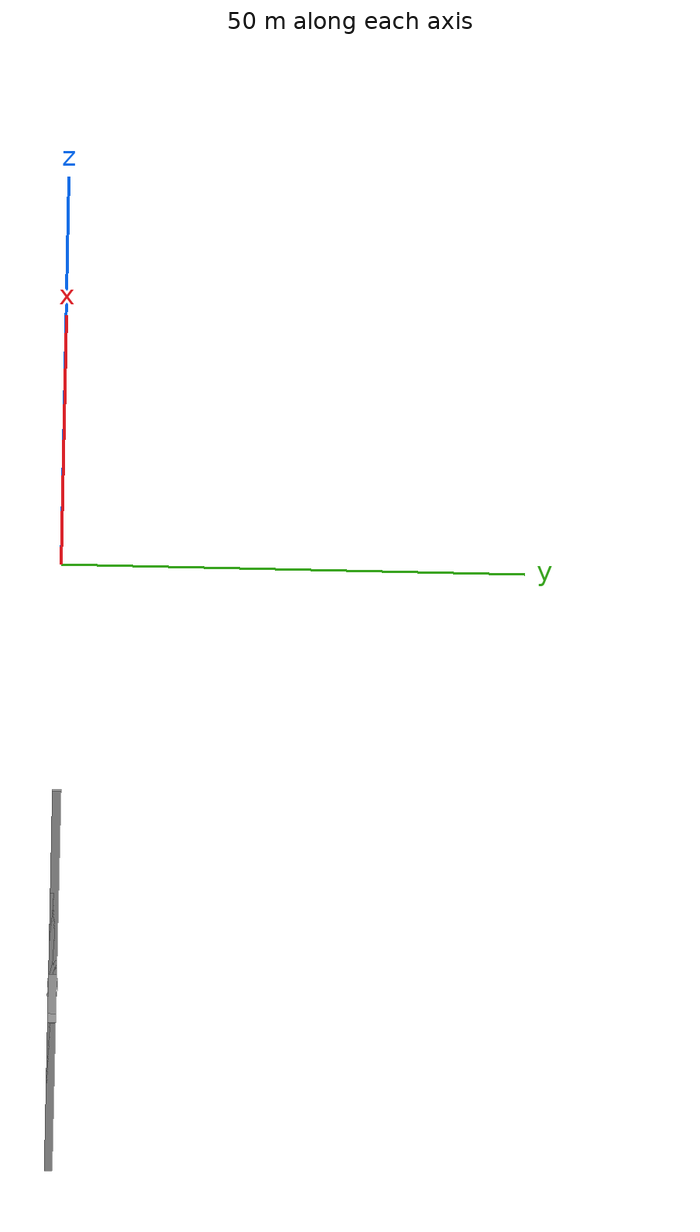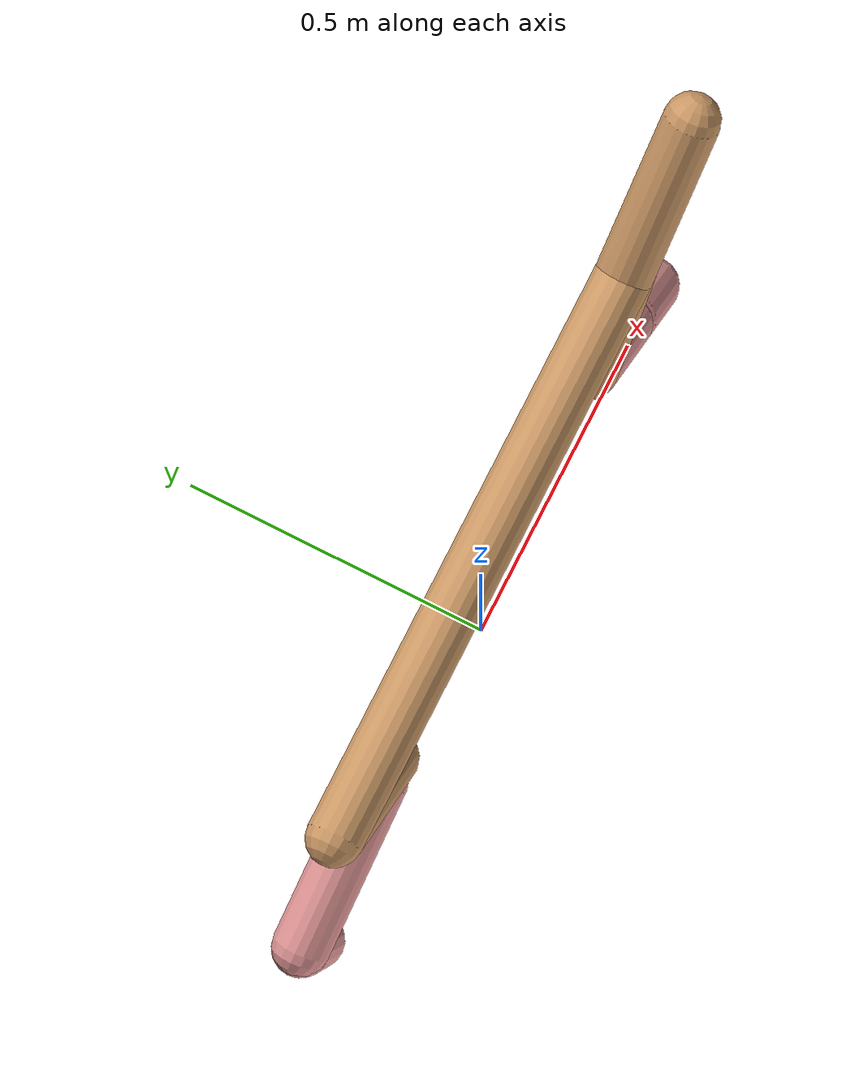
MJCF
<mujoco model="cheetah">
  <compiler angle="radian" coordinate="local" inertiafromgeom="true" settotalmass="14"/>
  <default>
    <joint armature=".1" damping=".01" limited="true" solimplimit="0 .8 .03" solreflimit=".02 1" stiffness="8"/>
    <geom conaffinity="0" condim="3" contype="1" friction=".4 .1 .1" rgba="0.8 0.6 .4 1" solimp="0.0 0.8 0.01" solref="0.02 1"/>
    <motor ctrllimited="true" ctrlrange="-1 1"/>
  </default>
  <size nstack="300000" nuser_geom="1"/>
  <option gravity="0 0 -9.81" timestep="0.01"/>

  <worldbody>
    <light cutoff="100" diffuse="1 1 1" dir="-0 0 -1.3" directional="true" exponent="1" pos="0 0 1.3" specular=".1 .1 .1"/>
    <body name="torso" pos="0 0 .7">
      <camera name="track" mode="trackcom" pos="0 -5 0.25" xyaxes="1 0 0 0 0 1"/>
      <joint armature="0" axis="1 0 0" damping="0" limited="false" name="rootx" pos="0 0 0" stiffness="0" type="slide"/>
      <joint armature="0" axis="0 0 1" damping="0" limited="false" name="rootz" pos="0 0 0" stiffness="0" type="slide"/>
      <joint armature="0" axis="0 1 0" damping="0" limited="false" name="rooty" pos="0 0 0" stiffness="0" type="hinge"/>
      <geom fromto="-.5 0 0 .5 0 0" name="torso" size="0.046" type="capsule"/>
      <geom axisangle="0 1 0 .87" name="head" pos=".6 0 .1" size="0.046 .15" type="capsule"/>
      <body name="bthigh" pos="-.5 0 0">
        <joint axis="0 1 0" damping="6" name="bthigh" pos="0 0 0" range="-.52 1.05" stiffness="240" type="hinge"/>
        <geom axisangle="0 1 0 -3.8" name="bthigh" pos=".1 0 -.13" size="0.046 .145" type="capsule"/>
        <body name="bshin" pos=".16 0 -.25">
          <joint axis="0 1 0" damping="4.5" name="bshin" pos="0 0 0" range="-.785 .785" stiffness="180" type="hinge"/>
          <geom axisangle="0 1 0 -2.03" name="bshin" pos="-.14 0 -.07" rgba="0.9 0.6 0.6 1" size="0.046 .15" type="capsule"/>
          <body name="bfoot" pos="-.28 0 -.14">
            <joint axis="0 1 0" damping="3" name="bfoot" pos="0 0 0" range="-.4 .785" stiffness="120" type="hinge"/>
            <geom axisangle="0 1 0 -.27" name="bfoot" pos=".03 0 -.097" rgba="0.9 0.6 0.6 1" size="0.046 .094" type="capsule"/>
          </body>
        </body>
      </body>
      <body name="fthigh" pos=".5 0 0">
        <joint axis="0 1 0" damping="4.5" name="fthigh" pos="0 0 0" range="-1 .7" stiffness="180" type="hinge"/>
        <geom axisangle="0 1 0 .52" name="fthigh" pos="-.07 0 -.12" size="0.046 .133" type="capsule"/>
        <body name="fshin" pos="-.14 0 -.24">
          <joint axis="0 1 0" damping="3" name="fshin" pos="0 0 0" range="-1.2 .87" stiffness="120" type="hinge"/>
          <geom axisangle="0 1 0 -.6" name="fshin" pos=".065 0 -.09" rgba="0.9 0.6 0.6 1" size="0.046 .106" type="capsule"/>
          <body name="ffoot" pos=".13 0 -.18">
            <joint axis="0 1 0" damping="1.5" name="ffoot" pos="0 0 0" range="-.5 .5" stiffness="60" type="hinge"/>
            <geom axisangle="0 1 0 -.6" name="ffoot" pos=".045 0 -.07" rgba="0.9 0.6 0.6 1" size="0.046 .07" type="capsule"/>
          </body>
        </body>
      </body>
    </body>

    <body name="empty" pos="-100 0 0">
      <geom name="empty-geom" pos="0 0 100" mass = "0.0"
            type="box" size="0.001 0.001 0.001"
            rgba="0.9 0.9 0.9 1"
            contype="1" conaffinity="1"/>
    </body>

    <body name="obstacle0" pos="-100 0 0">
      <geom name="obstacle0_geom" pos="0 0 -0.3" mass = "0.0"
            type="box" size="0.25 0.6 0.5"
            rgba="0.9 0.9 0.9 1"
            contype="1" conaffinity="1"/>
    </body>
    <body name="obstacle0-ground" pos="-100 0 0">
      <geom name="obstacle0-ground" pos="0 0 -0.4" mass = "0.0"
            type="box" size="50 0.5 0.1"
            rgba="0.7 0.7 0.7 1"
            conaffinity="1"/>
    </body>

    <body name="obstacle1" pos="-100 0 0">
      <geom name="obstacle1_geom" pos="0 0 0.6" mass = "0.0"
            type="cylinder" size="0.5 0.6"
            rgba="0.9 0.9 0.9 1"
            contype="1" conaffinity="1"
            axisangle="1 0 0 1.5708"/>
    </body>
    <body name="obstacle1-ground" pos="-100 0 0">
      <geom name="obstacle1-ground" pos="0 0 -0.4" mass = "0.0"
            type="box" size="50 0.5 0.1"
            rgba="0.7 0.7 0.7 1"
            contype="1" conaffinity="1"/>
    </body>

    <body name="obstacle2" pos="-100 0 0">
      <geom name="obstacle2-a_geom" pos="0 0 -0.15" mass = "0.001"
            type="box" size="1.5 0.6 0.1"
            rgba="0.9 0.9 0.9 1"
            contype="1" conaffinity="1"
            friction="0.8 0.1 0.1"
            euler="0 -0.174533 0"/>
      <geom name="obstacle2b-geom" pos="-3.5 0 -0.4" mass = "0.001"
            type="box" size="2.5 0.5 0.1"
            rgba="0.7 0.7 0.7 1"
            contype="1" conaffinity="1"/>
      <geom name="obstacle2c-geom" pos="5.5 0 -0.4" mass = "0.001"
            type="box" size="2.5 0.5 0.1"
            rgba="0.7 0.7 0.7 1"
            contype="1" conaffinity="1"/>
    </body>
    <body name="obstacle2-ground" pos="-100 0 0">
      <geom name="obstacle2a-ground" pos="-15 0 -0.4" mass = "0.001"
            type="box" size="10 0.5 0.1"
            rgba="0.7 0.7 0.7 1"
            contype="1" conaffinity="1"/>
      <geom name="obstacle2b-ground" pos="15 0 -0.4" mass = "0.001"
            type="box" size="10 0.5 0.1"
            rgba="0.7 0.7 0.7 1"
            contype="1" conaffinity="1"/>
    </body>

    <body name="obstacle3" pos="-100 0 0">
      <geom name="obstacle3a_geom" pos="-1.2 0 -0.30" mass = "0.001"
            type="box" size="0.2 0.6 0.12"
            rgba="0.9 0.9 0.9 1"
            contype="1" conaffinity="1"/>
      <geom name="obstacle3b_geom" pos="-0.4 0 -0.18" mass = "0.001"
            type="box" size="0.2 0.6 0.12"
            rgba="0.9 0.9 0.9 1"
            contype="1" conaffinity="1"/>
      <geom name="obstacle3e-geom" pos="-4.3 0 -0.4" mass = "0.001"
            type="box" size="2.5 0.5 0.1"
            rgba="0.7 0.7 0.7 1"
            contype="1" conaffinity="1"/>
      <geom name="obstacle3f-geom" pos="2.8 0 -0.4" mass = "0.001"
            type="box" size="2.5 0.5 0.1"
            rgba="0.7 0.7 0.7 1"
            contype="1" conaffinity="1"/>
    </body>
    <body name="obstacle3-ground" pos="-100 0 0">
      <geom name="obstacle3a-ground" pos="-13 0 -0.4" mass = "0.001"
            type="box" size="10 0.5 0.1"
            rgba="0.7 0.7 0.7 1"
            contype="1" conaffinity="1"/>
      <geom name="obstacle3b-ground" pos="13 0 -0.4" mass = "0.001"
            type="box" size="10 0.5 0.1"
            rgba="0.7 0.7 0.7 1"
            contype="1" conaffinity="1"/>
    </body>

    <body name="obstacle4" pos="-100 0 0.0">         <!-- 20° = 0.349066 rad -->
      <geom name="obstacle4b-geom" pos="-4.1 0 -0.4" mass = "0.001"
            type="box" size="1.5 0.5 0.1"
            rgba="0.7 0.7 0.7 1"
            contype="1" conaffinity="1"/>
      <geom name="obstacle4c-geom" pos="5.17 0 -0.4" mass = "0.001"
            type="box" size="0.9 0.5 0.1"
            rgba="0.7 0.7 0.7 1"
            contype="1" conaffinity="1"/>
      <geom name="obstacle4d-geom" pos="-1.4 0 -1.3" mass = "0.001"
            type="box" size="0.4 0.5 0.1"
            rgba="0.7 0.7 0.7 1"
            contype="1" conaffinity="1"/>
      <geom name="obstacle4e-geom" pos="-1 0 -0.3" mass = "0.001"
            type="box" size="0.1 0.5 1.1"
            rgba="0.7 0.7 0.7 1"
            contype="1" conaffinity="1"/>
      <geom name="obstacle4f-geom" pos="-2.9 0 -2.59" mass = "0.0"
            type="box" size="1.2 0.5 0.1"
            rgba="0.9 0.9 0.9 1"
            contype="1" conaffinity="1"/>
      <geom name="obstacle4g-geom" pos="-2.25 0 -1.425" mass = "0.0"
            type="box" size="0.5 0.5 0.1"
            rgba="0.9 0.9 0.9 1"
            contype="1" conaffinity="1"
            euler="0 -0.261800 0"/>
      <geom name="obstacle4h-geom" pos="-4.45 0 -1.55" mass = "0.0"
            type="box" size="1.2 0.5 0.1"
            rgba="0.9 0.9 0.9 1"
            contype="1" conaffinity="1"
            euler="0 1.221731 0"/>
      <geom name="obstacle4i-geom" pos="-4.0 0 -2.4" mass = "0.0"
            type="box" size="0.3 0.5 0.1"
            rgba="0.9 0.9 0.9 1"
            contype="1" conaffinity="1"
            euler="0 0.785399 0"/>
      <geom name="obstacle4a-geom" pos="1.3 0 -1.49" mass = "0.0"
            type="box" size="3.2 0.5 0.1"
            rgba="0.9 0.9 0.9 1"
            contype="1" conaffinity="1"
            friction="1 0.1 0.1"
            euler="0 -0.349066 0"/>
    </body>
    <body name="obstacle4-ground" pos="-100 0 0">
      <geom name="obstacle4a-ground" pos="-15 0 -0.4" mass = "0.001"
            type="box" size="10 0.5 0.1"
            rgba="0.7 0.7 0.7 1"
            contype="1" conaffinity="1"/>
      <geom name="obstacle4b-ground" pos="15 0 -0.4" mass = "0.001"
            type="box" size="10 0.5 0.1"
            rgba="0.7 0.7 0.7 1"
            contype="1" conaffinity="1"/>
    </body>

  </worldbody>
  <actuator>
    <motor gear="120" joint="bthigh" name="bthigh"/>
    <motor gear="90" joint="bshin" name="bshin"/>
    <motor gear="60" joint="bfoot" name="bfoot"/>
    <motor gear="120" joint="fthigh" name="fthigh"/>
    <motor gear="60" joint="fshin" name="fshin"/>
    <motor gear="30" joint="ffoot" name="ffoot"/>
  </actuator>
</mujoco>
